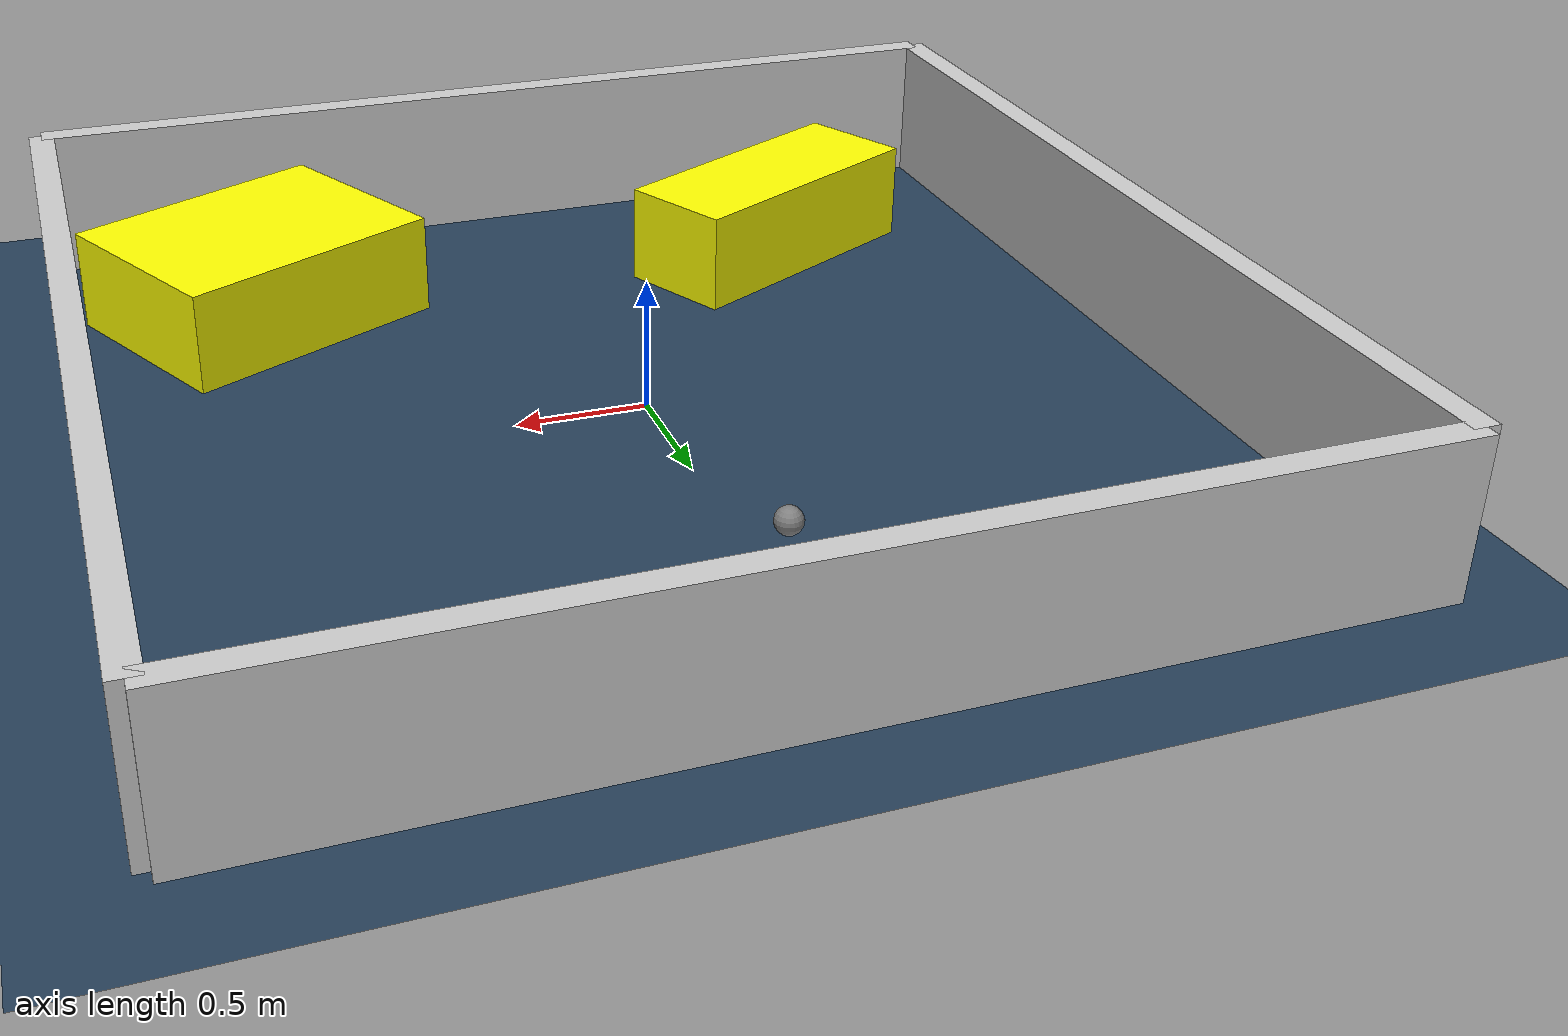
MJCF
<?xml version="1.0" ?>
<mujoco model="generated_environment">
  <option timestep="0.01" integrator="RK4" cone="elliptic"/>
  <default>
    <geom density="1"/>
  </default>
  <asset>
    <texture builtin="gradient" height="3072" rgb1="0.3 0.5 0.7" rgb2="0 0 0" type="skybox" width="512"/>
    <texture builtin="checker" height="300" mark="edge" markrgb="0.8 0.8 0.8" name="groundplane" rgb1="0.2 0.3 0.4" rgb2="0.1 0.2 0.3" type="2d" width="300"/>
    <material name="groundplane" reflectance="0.2" texrepeat="5 5" texture="groundplane" texuniform="true"/>
    <material name="robot" rgba="0.0 1.0 0.0 1"/>
  </asset>
  <worldbody>
    <light dir="0 0 -1" directional="true" pos="0 0 1.5"/>
    <geom condim="4" friction="1.0 0.005 0.001" material="groundplane" name="floor" size="0 0 0.05" type="plane"/>
    <body name="walls">
      <geom name="wall_1" condim="4" pos="-2.0 0.0 0.3" rgba="0.800000011920929 0.800000011920929 0.800000011920929 1.0" size="0.05 2.0 0.3" type="box"/>
      <geom name="wall_2" condim="4" pos="2.0 0.0 0.3" rgba="0.800000011920929 0.800000011920929 0.800000011920929 1.0" size="0.05 2.0 0.3" type="box"/>
      <geom name="wall_3" condim="4" pos="0.0 -2.0 0.3" rgba="0.800000011920929 0.800000011920929 0.800000011920929 1.0" size="2.0 0.05 0.3" type="box"/>
      <geom name="wall_4" condim="4" pos="0.0 2.0 0.3" rgba="0.800000011920929 0.800000011920929 0.800000011920929 1.0" size="2.0 0.05 0.3" type="box"/>
    </body>
    <body name="robot">
      <joint name="joint_x" type="slide" pos="0 0 0" axis="1 0 0"/>
      <joint name="joint_y" type="slide" pos="0 0 0" axis="0 1 0"/>
      <geom name="robot" type="sphere" pos="-0.06326719387071122 1.2291753038605595 0.2" size="0.05" mass="5." friction="1.0 0.005 0.0001" condim="4"/>
      <site name="sensor_ball"/>
    </body>
    <body name="obstacle_1_movable">
      <geom name="obstacle_1_movable" condim="4" pos="-0.9439552893068783 -1.1716265368252967 0.2" euler="0 0 296.6275318369401" friction="1.0 0.005 0.001" rgba="1 1 0 1" size="0.23455103917829245 0.5797845494700771 0.2" type="box" mass="0.1"/>
      <joint type="free"/>
    </body>
    <body name="obstacle_2_movable">
      <geom name="obstacle_2_movable" condim="4" pos="1.2534728577968077 -1.2323902240808562 0.2" euler="0 0 116.14723407312155" friction="1.0 0.005 0.001" rgba="1 1 0 1" size="0.42094648650030864 0.5435911633708093 0.2" type="box" mass="0.1"/>
      <joint type="free"/>
    </body>
  </worldbody>
  <actuator>
    <motor name="actuator_x" joint="joint_x" gear="1" ctrlrange="-1 1"/>
    <motor name="actuator_y" joint="joint_y" gear="1" ctrlrange="-1 1"/>
  </actuator>
</mujoco>
